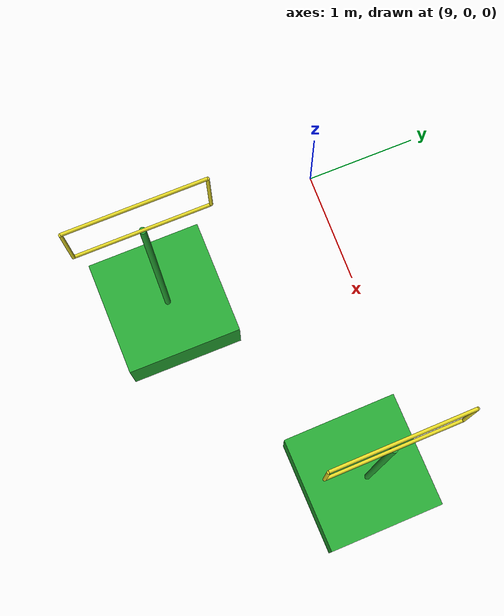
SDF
<sdf version="1.6">
 <world name="vrc_task_1">
  <model name="flipkart_hoop_clone_4">
   <link name="link_0">
    <inertial>
     <mass>0.530306</mass>
     <inertia>
      <ixx>0.0566207</ixx>
      <ixy>0</ixy>
      <ixz>0</ixz>
      <iyy>0.0566207</iyy>
      <iyz>0</iyz>
      <izz>0.0883844</izz>
     </inertia>
    </inertial>
    <pose>0.141833 0.667401 -1.68595 0 -0 0</pose>
    <visual name="visual">
     <geometry><box><size>1 1 0.5</size></box></geometry>
     <material>
      <lighting>1</lighting>
      <script><uri>file://media/materials/scripts/gazebo.material</uri><name>Gazebo/Green</name></script>
      <shader type="pixel"/>
      <emissive>0 0 0 1</emissive>
     </material>
    </visual>
    <collision name="collision">
     <geometry><box><size>1 1 0.5</size></box></geometry>
     <surface>
      <friction>
       <ode><mu>1</mu><mu2>1</mu2><fdir1>0 0 0</fdir1><slip1>0</slip1><slip2>0</slip2></ode>
       <torsional>
        <coefficient>1</coefficient>
        <patch_radius>0</patch_radius>
        <surface_radius>0</surface_radius>
        <use_patch_radius>1</use_patch_radius>
        <ode><slip>0</slip></ode>
       </torsional>
      </friction>
      <bounce><restitution_coefficient>0</restitution_coefficient><threshold>1e+06</threshold></bounce>
      <contact>
       <collide_without_contact>0</collide_without_contact>
       <collide_without_contact_bitmask>1</collide_without_contact_bitmask>
       <collide_bitmask>1</collide_bitmask>
       <ode>
        <soft_cfm>0</soft_cfm>
        <soft_erp>0.2</soft_erp>
        <kp>1e+13</kp>
        <kd>1</kd>
        <max_vel>0.01</max_vel>
        <min_depth>0</min_depth>
       </ode>
       <bullet>
        <split_impulse>1</split_impulse>
        <split_impulse_penetration_threshold>-0.01</split_impulse_penetration_threshold>
        <soft_cfm>0</soft_cfm>
        <soft_erp>0.2</soft_erp>
        <kp>1e+13</kp>
        <kd>1</kd>
       </bullet>
      </contact>
     </surface>
    </collision>
   </link>
   <link name="link_1">
    <inertial>
     <mass>0.25</mass>
     <inertia>
      <ixx>0.130247</ixx>
      <ixy>0</ixy>
      <ixz>0</ixz>
      <iyy>0.130247</iyy>
      <iyz>0</iyz>
      <izz>7.813e-05</izz>
     </inertia>
    </inertial>
    <pose>0.122412 0.714194 -0.478486 0 -0 0</pose>
    <visual name="visual">
     <geometry><cylinder><radius>0.025</radius><length>2.5</length></cylinder></geometry>
     <material>
      <lighting>1</lighting>
      <script><uri>file://media/materials/scripts/gazebo.material</uri><name>Gazebo/Green</name></script>
      <shader type="pixel"/>
      <emissive>0 0 0 1</emissive>
     </material>
    </visual>
    <collision name="collision">
     <geometry><cylinder><radius>0.025</radius><length>2.5</length></cylinder></geometry>
     <surface>
      <friction>
       <ode><mu>1</mu><mu2>1</mu2><fdir1>0 0 0</fdir1><slip1>0</slip1><slip2>0</slip2></ode>
       <torsional>
        <coefficient>1</coefficient>
        <patch_radius>0</patch_radius>
        <surface_radius>0</surface_radius>
        <use_patch_radius>1</use_patch_radius>
        <ode><slip>0</slip></ode>
       </torsional>
      </friction>
      <bounce><restitution_coefficient>0</restitution_coefficient><threshold>1e+06</threshold></bounce>
      <contact>
       <collide_without_contact>0</collide_without_contact>
       <collide_without_contact_bitmask>1</collide_without_contact_bitmask>
       <collide_bitmask>1</collide_bitmask>
       <ode>
        <soft_cfm>0</soft_cfm>
        <soft_erp>0.2</soft_erp>
        <kp>1e+13</kp>
        <kd>1</kd>
        <max_vel>0.01</max_vel>
        <min_depth>0</min_depth>
       </ode>
       <bullet>
        <split_impulse>1</split_impulse>
        <split_impulse_penetration_threshold>-0.01</split_impulse_penetration_threshold>
        <soft_cfm>0</soft_cfm>
        <soft_erp>0.2</soft_erp>
        <kp>1e+13</kp>
        <kd>1</kd>
       </bullet>
      </contact>
     </surface>
    </collision>
   </link>
   <link name="link_2">
    <inertial>
     <mass>0.05</mass>
     <inertia>
      <ixx>0.00416862</ixx>
      <ixy>0</ixy>
      <ixz>0</ixz>
      <iyy>0.00416862</iyy>
      <iyz>0</iyz>
      <izz>3.91e-06</izz>
     </inertia>
    </inertial>
    <pose>0.122412 0.714194 1.32141 1.57 -0 1.57</pose>
    <visual name="visual">
     <geometry><cylinder><radius>0.0125</radius><length>1</length></cylinder></geometry>
     <material>
      <lighting>1</lighting>
      <script><uri>file://media/materials/scripts/gazebo.material</uri><name>Gazebo/Yellow</name></script>
      <shader type="pixel"/>
      <emissive>0 0 0 1</emissive>
     </material>
    </visual>
    <collision name="collision">
     <geometry><cylinder><radius>0.0125</radius><length>1</length></cylinder></geometry>
     <surface>
      <friction>
       <ode><mu>1</mu><mu2>1</mu2><fdir1>0 0 0</fdir1><slip1>0</slip1><slip2>0</slip2></ode>
       <torsional>
        <coefficient>1</coefficient>
        <patch_radius>0</patch_radius>
        <surface_radius>0</surface_radius>
        <use_patch_radius>1</use_patch_radius>
        <ode><slip>0</slip></ode>
       </torsional>
      </friction>
      <bounce><restitution_coefficient>0</restitution_coefficient><threshold>1e+06</threshold></bounce>
      <contact>
       <collide_without_contact>0</collide_without_contact>
       <collide_without_contact_bitmask>1</collide_without_contact_bitmask>
       <collide_bitmask>1</collide_bitmask>
       <ode>
        <soft_cfm>0</soft_cfm>
        <soft_erp>0.2</soft_erp>
        <kp>1e+13</kp>
        <kd>1</kd>
        <max_vel>0.01</max_vel>
        <min_depth>0</min_depth>
       </ode>
       <bullet>
        <split_impulse>1</split_impulse>
        <split_impulse_penetration_threshold>-0.01</split_impulse_penetration_threshold>
        <soft_cfm>0</soft_cfm>
        <soft_erp>0.2</soft_erp>
        <kp>1e+13</kp>
        <kd>1</kd>
       </bullet>
      </contact>
     </surface>
    </collision>
   </link>
   <link name="link_2_clone_0">
    <inertial>
     <mass>0.05</mass>
     <inertia>
      <ixx>0.00416862</ixx>
      <ixy>0</ixy>
      <ixz>0</ixz>
      <iyy>0.00416862</iyy>
      <iyz>0</iyz>
      <izz>3.91e-06</izz>
     </inertia>
    </inertial>
    <pose>0.122412 0.714194 0.771414 1.57 -0 1.57</pose>
    <visual name="visual">
     <geometry><cylinder><radius>0.0125</radius><length>1</length></cylinder></geometry>
     <material>
      <lighting>1</lighting>
      <script><uri>file://media/materials/scripts/gazebo.material</uri><name>Gazebo/Yellow</name></script>
      <shader type="pixel"/>
      <emissive>0 0 0 1</emissive>
     </material>
    </visual>
    <collision name="collision">
     <geometry><cylinder><radius>0.0125</radius><length>1</length></cylinder></geometry>
     <surface>
      <friction>
       <ode><mu>1</mu><mu2>1</mu2><fdir1>0 0 0</fdir1><slip1>0</slip1><slip2>0</slip2></ode>
       <torsional>
        <coefficient>1</coefficient>
        <patch_radius>0</patch_radius>
        <surface_radius>0</surface_radius>
        <use_patch_radius>1</use_patch_radius>
        <ode><slip>0</slip></ode>
       </torsional>
      </friction>
      <bounce><restitution_coefficient>0</restitution_coefficient><threshold>1e+06</threshold></bounce>
      <contact>
       <collide_without_contact>0</collide_without_contact>
       <collide_without_contact_bitmask>1</collide_without_contact_bitmask>
       <collide_bitmask>1</collide_bitmask>
       <ode>
        <soft_cfm>0</soft_cfm>
        <soft_erp>0.2</soft_erp>
        <kp>1e+13</kp>
        <kd>1</kd>
        <max_vel>0.01</max_vel>
        <min_depth>0</min_depth>
       </ode>
       <bullet>
        <split_impulse>1</split_impulse>
        <split_impulse_penetration_threshold>-0.01</split_impulse_penetration_threshold>
        <soft_cfm>0</soft_cfm>
        <soft_erp>0.2</soft_erp>
        <kp>1e+13</kp>
        <kd>1</kd>
       </bullet>
      </contact>
     </surface>
    </collision>
   </link>
   <link name="link_3_clone_clone">
    <inertial>
     <mass>0.025</mass>
     <inertia>
      <ixx>0.00063118</ixx>
      <ixy>0</ixy>
      <ixz>0</ixz>
      <iyy>0.00063118</iyy>
      <iyz>0</iyz>
      <izz>1.95e-06</izz>
     </inertia>
    </inertial>
    <pose>-0.377588 0.714194 1.04641 8e-06 -0 8e-06</pose>
    <visual name="visual">
     <geometry><cylinder><radius>0.0125</radius><length>0.55</length></cylinder></geometry>
     <material>
      <lighting>1</lighting>
      <script><uri>file://media/materials/scripts/gazebo.material</uri><name>Gazebo/Yellow</name></script>
      <shader type="pixel"/>
      <emissive>0 0 0 1</emissive>
     </material>
    </visual>
    <collision name="collision">
     <geometry><cylinder><radius>0.0125</radius><length>0.55</length></cylinder></geometry>
     <surface>
      <friction>
       <ode><mu>1</mu><mu2>1</mu2><fdir1>0 0 0</fdir1><slip1>0</slip1><slip2>0</slip2></ode>
       <torsional>
        <coefficient>1</coefficient>
        <patch_radius>0</patch_radius>
        <surface_radius>0</surface_radius>
        <use_patch_radius>1</use_patch_radius>
        <ode><slip>0</slip></ode>
       </torsional>
      </friction>
      <bounce><restitution_coefficient>0</restitution_coefficient><threshold>1e+06</threshold></bounce>
      <contact>
       <collide_without_contact>0</collide_without_contact>
       <collide_without_contact_bitmask>1</collide_without_contact_bitmask>
       <collide_bitmask>1</collide_bitmask>
       <ode>
        <soft_cfm>0</soft_cfm>
        <soft_erp>0.2</soft_erp>
        <kp>1e+13</kp>
        <kd>1</kd>
        <max_vel>0.01</max_vel>
        <min_depth>0</min_depth>
       </ode>
       <bullet>
        <split_impulse>1</split_impulse>
        <split_impulse_penetration_threshold>-0.01</split_impulse_penetration_threshold>
        <soft_cfm>0</soft_cfm>
        <soft_erp>0.2</soft_erp>
        <kp>1e+13</kp>
        <kd>1</kd>
       </bullet>
      </contact>
     </surface>
    </collision>
   </link>
   <link name="link_3_clone_clone_clone">
    <inertial>
     <mass>0.025</mass>
     <inertia>
      <ixx>0.00063118</ixx>
      <ixy>0</ixy>
      <ixz>0</ixz>
      <iyy>0.00063118</iyy>
      <iyz>0</iyz>
      <izz>1.95e-06</izz>
     </inertia>
    </inertial>
    <pose>0.622412 0.714194 1.04641 5.7e-05 -0 5.7e-05</pose>
    <visual name="visual">
     <geometry><cylinder><radius>0.0125</radius><length>0.55</length></cylinder></geometry>
     <material>
      <lighting>1</lighting>
      <script><uri>file://media/materials/scripts/gazebo.material</uri><name>Gazebo/Yellow</name></script>
      <shader type="pixel"/>
      <emissive>0 0 0 1</emissive>
     </material>
    </visual>
    <collision name="collision">
     <geometry><cylinder><radius>0.0125</radius><length>0.55</length></cylinder></geometry>
     <surface>
      <friction>
       <ode><mu>1</mu><mu2>1</mu2><fdir1>0 0 0</fdir1><slip1>0</slip1><slip2>0</slip2></ode>
       <torsional>
        <coefficient>1</coefficient>
        <patch_radius>0</patch_radius>
        <surface_radius>0</surface_radius>
        <use_patch_radius>1</use_patch_radius>
        <ode><slip>0</slip></ode>
       </torsional>
      </friction>
      <bounce><restitution_coefficient>0</restitution_coefficient><threshold>1e+06</threshold></bounce>
      <contact>
       <collide_without_contact>0</collide_without_contact>
       <collide_without_contact_bitmask>1</collide_without_contact_bitmask>
       <collide_bitmask>1</collide_bitmask>
       <ode>
        <soft_cfm>0</soft_cfm>
        <soft_erp>0.2</soft_erp>
        <kp>1e+13</kp>
        <kd>1</kd>
        <max_vel>0.01</max_vel>
        <min_depth>0</min_depth>
       </ode>
       <bullet>
        <split_impulse>1</split_impulse>
        <split_impulse_penetration_threshold>-0.01</split_impulse_penetration_threshold>
        <soft_cfm>0</soft_cfm>
        <soft_erp>0.2</soft_erp>
        <kp>1e+13</kp>
        <kd>1</kd>
       </bullet>
      </contact>
     </surface>
    </collision>
   </link>
   <joint name="link_0_JOINT_0" type="fixed">
    <parent>link_0</parent>
    <child>link_1</child>
    <physics>
     <ode><limit><cfm>0</cfm><erp>0.2</erp></limit><suspension><cfm>0</cfm><erp>0.2</erp></suspension></ode>
    </physics>
   </joint>
   <joint name="link_1_JOINT_0" type="fixed">
    <parent>link_1</parent>
    <child>link_2_clone_0</child>
    <physics>
     <ode><limit><cfm>0</cfm><erp>0.2</erp></limit><suspension><cfm>0</cfm><erp>0.2</erp></suspension></ode>
    </physics>
   </joint>
   <joint name="link_2_JOINT_2" type="fixed">
    <parent>link_2</parent>
    <child>link_3_clone_clone_clone</child>
    <physics>
     <ode><limit><cfm>0</cfm><erp>0.2</erp></limit><suspension><cfm>0</cfm><erp>0.2</erp></suspension></ode>
    </physics>
   </joint>
   <joint name="link_2_clone_0_JOINT_4" type="fixed">
    <parent>link_2_clone_0</parent>
    <child>link_3_clone_clone</child>
    <physics>
     <ode><limit><cfm>0</cfm><erp>0.2</erp></limit><suspension><cfm>0</cfm><erp>0.2</erp></suspension></ode>
    </physics>
   </joint>
   <joint name="link_3_clone_clone_JOINT_1" type="fixed">
    <parent>link_3_clone_clone</parent>
    <child>link_2</child>
    <physics>
     <ode><limit><cfm>0</cfm><erp>0.2</erp></limit><suspension><cfm>0</cfm><erp>0.2</erp></suspension></ode>
    </physics>
   </joint>
   <joint name="link_3_clone_clone_clone_JOINT_3" type="fixed">
    <parent>link_3_clone_clone_clone</parent>
    <child>link_2_clone_0</child>
    <physics>
     <ode><limit><cfm>0</cfm><erp>0.2</erp></limit><suspension><cfm>0</cfm><erp>0.2</erp></suspension></ode>
    </physics>
   </joint>
   <static>0</static>
   <pose>9.00044 -1.50062 1.93592 0 6e-05 -1.5657</pose>
  </model>
  <model name="flipkart_hoop_clone_6">
   <link name="link_0">
    <inertial>
     <mass>0.530306</mass>
     <inertia>
      <ixx>0.0566207</ixx>
      <ixy>0</ixy>
      <ixz>0</ixz>
      <iyy>0.0566207</iyy>
      <iyz>0</iyz>
      <izz>0.0883844</izz>
     </inertia>
    </inertial>
    <pose>0.141833 0.667401 -1.68595 0 -0 0</pose>
    <visual name="visual">
     <geometry><box><size>1 1 0.5</size></box></geometry>
     <material>
      <lighting>1</lighting>
      <script><uri>file://media/materials/scripts/gazebo.material</uri><name>Gazebo/Green</name></script>
      <shader type="pixel"/>
      <emissive>0 0 0 1</emissive>
     </material>
    </visual>
    <collision name="collision">
     <geometry><box><size>1 1 0.5</size></box></geometry>
     <surface>
      <friction>
       <ode><mu>1</mu><mu2>1</mu2><fdir1>0 0 0</fdir1><slip1>0</slip1><slip2>0</slip2></ode>
       <torsional>
        <coefficient>1</coefficient>
        <patch_radius>0</patch_radius>
        <surface_radius>0</surface_radius>
        <use_patch_radius>1</use_patch_radius>
        <ode><slip>0</slip></ode>
       </torsional>
      </friction>
      <bounce><restitution_coefficient>0</restitution_coefficient><threshold>1e+06</threshold></bounce>
      <contact>
       <collide_without_contact>0</collide_without_contact>
       <collide_without_contact_bitmask>1</collide_without_contact_bitmask>
       <collide_bitmask>1</collide_bitmask>
       <ode>
        <soft_cfm>0</soft_cfm>
        <soft_erp>0.2</soft_erp>
        <kp>1e+13</kp>
        <kd>1</kd>
        <max_vel>0.01</max_vel>
        <min_depth>0</min_depth>
       </ode>
       <bullet>
        <split_impulse>1</split_impulse>
        <split_impulse_penetration_threshold>-0.01</split_impulse_penetration_threshold>
        <soft_cfm>0</soft_cfm>
        <soft_erp>0.2</soft_erp>
        <kp>1e+13</kp>
        <kd>1</kd>
       </bullet>
      </contact>
     </surface>
    </collision>
   </link>
   <link name="link_1">
    <inertial>
     <mass>0.25</mass>
     <inertia>
      <ixx>0.130247</ixx>
      <ixy>0</ixy>
      <ixz>0</ixz>
      <iyy>0.130247</iyy>
      <iyz>0</iyz>
      <izz>7.813e-05</izz>
     </inertia>
    </inertial>
    <pose>0.122412 0.714194 -0.478486 0 -0 0</pose>
    <visual name="visual">
     <geometry><cylinder><radius>0.025</radius><length>2.5</length></cylinder></geometry>
     <material>
      <lighting>1</lighting>
      <script><uri>file://media/materials/scripts/gazebo.material</uri><name>Gazebo/Green</name></script>
      <shader type="pixel"/>
      <emissive>0 0 0 1</emissive>
     </material>
    </visual>
    <collision name="collision">
     <geometry><cylinder><radius>0.025</radius><length>2.5</length></cylinder></geometry>
     <surface>
      <friction>
       <ode><mu>1</mu><mu2>1</mu2><fdir1>0 0 0</fdir1><slip1>0</slip1><slip2>0</slip2></ode>
       <torsional>
        <coefficient>1</coefficient>
        <patch_radius>0</patch_radius>
        <surface_radius>0</surface_radius>
        <use_patch_radius>1</use_patch_radius>
        <ode><slip>0</slip></ode>
       </torsional>
      </friction>
      <bounce><restitution_coefficient>0</restitution_coefficient><threshold>1e+06</threshold></bounce>
      <contact>
       <collide_without_contact>0</collide_without_contact>
       <collide_without_contact_bitmask>1</collide_without_contact_bitmask>
       <collide_bitmask>1</collide_bitmask>
       <ode>
        <soft_cfm>0</soft_cfm>
        <soft_erp>0.2</soft_erp>
        <kp>1e+13</kp>
        <kd>1</kd>
        <max_vel>0.01</max_vel>
        <min_depth>0</min_depth>
       </ode>
       <bullet>
        <split_impulse>1</split_impulse>
        <split_impulse_penetration_threshold>-0.01</split_impulse_penetration_threshold>
        <soft_cfm>0</soft_cfm>
        <soft_erp>0.2</soft_erp>
        <kp>1e+13</kp>
        <kd>1</kd>
       </bullet>
      </contact>
     </surface>
    </collision>
   </link>
   <link name="link_2">
    <inertial>
     <mass>0.05</mass>
     <inertia>
      <ixx>0.00416862</ixx>
      <ixy>0</ixy>
      <ixz>0</ixz>
      <iyy>0.00416862</iyy>
      <iyz>0</iyz>
      <izz>3.91e-06</izz>
     </inertia>
    </inertial>
    <pose>0.122412 0.714194 1.32141 1.57 -0 1.57</pose>
    <visual name="visual">
     <geometry><cylinder><radius>0.0125</radius><length>1</length></cylinder></geometry>
     <material>
      <lighting>1</lighting>
      <script><uri>file://media/materials/scripts/gazebo.material</uri><name>Gazebo/Yellow</name></script>
      <shader type="pixel"/>
      <emissive>0 0 0 1</emissive>
     </material>
    </visual>
    <collision name="collision">
     <geometry><cylinder><radius>0.0125</radius><length>1</length></cylinder></geometry>
     <surface>
      <friction>
       <ode><mu>1</mu><mu2>1</mu2><fdir1>0 0 0</fdir1><slip1>0</slip1><slip2>0</slip2></ode>
       <torsional>
        <coefficient>1</coefficient>
        <patch_radius>0</patch_radius>
        <surface_radius>0</surface_radius>
        <use_patch_radius>1</use_patch_radius>
        <ode><slip>0</slip></ode>
       </torsional>
      </friction>
      <bounce><restitution_coefficient>0</restitution_coefficient><threshold>1e+06</threshold></bounce>
      <contact>
       <collide_without_contact>0</collide_without_contact>
       <collide_without_contact_bitmask>1</collide_without_contact_bitmask>
       <collide_bitmask>1</collide_bitmask>
       <ode>
        <soft_cfm>0</soft_cfm>
        <soft_erp>0.2</soft_erp>
        <kp>1e+13</kp>
        <kd>1</kd>
        <max_vel>0.01</max_vel>
        <min_depth>0</min_depth>
       </ode>
       <bullet>
        <split_impulse>1</split_impulse>
        <split_impulse_penetration_threshold>-0.01</split_impulse_penetration_threshold>
        <soft_cfm>0</soft_cfm>
        <soft_erp>0.2</soft_erp>
        <kp>1e+13</kp>
        <kd>1</kd>
       </bullet>
      </contact>
     </surface>
    </collision>
   </link>
   <link name="link_2_clone_0">
    <inertial>
     <mass>0.05</mass>
     <inertia>
      <ixx>0.00416862</ixx>
      <ixy>0</ixy>
      <ixz>0</ixz>
      <iyy>0.00416862</iyy>
      <iyz>0</iyz>
      <izz>3.91e-06</izz>
     </inertia>
    </inertial>
    <pose>0.122412 0.714194 0.771414 1.57 -0 1.57</pose>
    <visual name="visual">
     <geometry><cylinder><radius>0.0125</radius><length>1</length></cylinder></geometry>
     <material>
      <lighting>1</lighting>
      <script><uri>file://media/materials/scripts/gazebo.material</uri><name>Gazebo/Yellow</name></script>
      <shader type="pixel"/>
      <emissive>0 0 0 1</emissive>
     </material>
    </visual>
    <collision name="collision">
     <geometry><cylinder><radius>0.0125</radius><length>1</length></cylinder></geometry>
     <surface>
      <friction>
       <ode><mu>1</mu><mu2>1</mu2><fdir1>0 0 0</fdir1><slip1>0</slip1><slip2>0</slip2></ode>
       <torsional>
        <coefficient>1</coefficient>
        <patch_radius>0</patch_radius>
        <surface_radius>0</surface_radius>
        <use_patch_radius>1</use_patch_radius>
        <ode><slip>0</slip></ode>
       </torsional>
      </friction>
      <bounce><restitution_coefficient>0</restitution_coefficient><threshold>1e+06</threshold></bounce>
      <contact>
       <collide_without_contact>0</collide_without_contact>
       <collide_without_contact_bitmask>1</collide_without_contact_bitmask>
       <collide_bitmask>1</collide_bitmask>
       <ode>
        <soft_cfm>0</soft_cfm>
        <soft_erp>0.2</soft_erp>
        <kp>1e+13</kp>
        <kd>1</kd>
        <max_vel>0.01</max_vel>
        <min_depth>0</min_depth>
       </ode>
       <bullet>
        <split_impulse>1</split_impulse>
        <split_impulse_penetration_threshold>-0.01</split_impulse_penetration_threshold>
        <soft_cfm>0</soft_cfm>
        <soft_erp>0.2</soft_erp>
        <kp>1e+13</kp>
        <kd>1</kd>
       </bullet>
      </contact>
     </surface>
    </collision>
   </link>
   <link name="link_3_clone_clone">
    <inertial>
     <mass>0.025</mass>
     <inertia>
      <ixx>0.00063118</ixx>
      <ixy>0</ixy>
      <ixz>0</ixz>
      <iyy>0.00063118</iyy>
      <iyz>0</iyz>
      <izz>1.95e-06</izz>
     </inertia>
    </inertial>
    <pose>-0.377588 0.714194 1.04641 8e-06 -0 8e-06</pose>
    <visual name="visual">
     <geometry><cylinder><radius>0.0125</radius><length>0.55</length></cylinder></geometry>
     <material>
      <lighting>1</lighting>
      <script><uri>file://media/materials/scripts/gazebo.material</uri><name>Gazebo/Yellow</name></script>
      <shader type="pixel"/>
      <emissive>0 0 0 1</emissive>
     </material>
    </visual>
    <collision name="collision">
     <geometry><cylinder><radius>0.0125</radius><length>0.55</length></cylinder></geometry>
     <surface>
      <friction>
       <ode><mu>1</mu><mu2>1</mu2><fdir1>0 0 0</fdir1><slip1>0</slip1><slip2>0</slip2></ode>
       <torsional>
        <coefficient>1</coefficient>
        <patch_radius>0</patch_radius>
        <surface_radius>0</surface_radius>
        <use_patch_radius>1</use_patch_radius>
        <ode><slip>0</slip></ode>
       </torsional>
      </friction>
      <bounce><restitution_coefficient>0</restitution_coefficient><threshold>1e+06</threshold></bounce>
      <contact>
       <collide_without_contact>0</collide_without_contact>
       <collide_without_contact_bitmask>1</collide_without_contact_bitmask>
       <collide_bitmask>1</collide_bitmask>
       <ode>
        <soft_cfm>0</soft_cfm>
        <soft_erp>0.2</soft_erp>
        <kp>1e+13</kp>
        <kd>1</kd>
        <max_vel>0.01</max_vel>
        <min_depth>0</min_depth>
       </ode>
       <bullet>
        <split_impulse>1</split_impulse>
        <split_impulse_penetration_threshold>-0.01</split_impulse_penetration_threshold>
        <soft_cfm>0</soft_cfm>
        <soft_erp>0.2</soft_erp>
        <kp>1e+13</kp>
        <kd>1</kd>
       </bullet>
      </contact>
     </surface>
    </collision>
   </link>
   <link name="link_3_clone_clone_clone">
    <inertial>
     <mass>0.025</mass>
     <inertia>
      <ixx>0.00063118</ixx>
      <ixy>0</ixy>
      <ixz>0</ixz>
      <iyy>0.00063118</iyy>
      <iyz>0</iyz>
      <izz>1.95e-06</izz>
     </inertia>
    </inertial>
    <pose>0.622412 0.714194 1.04641 5.7e-05 -0 5.7e-05</pose>
    <visual name="visual">
     <geometry><cylinder><radius>0.0125</radius><length>0.55</length></cylinder></geometry>
     <material>
      <lighting>1</lighting>
      <script><uri>file://media/materials/scripts/gazebo.material</uri><name>Gazebo/Yellow</name></script>
      <shader type="pixel"/>
      <emissive>0 0 0 1</emissive>
     </material>
    </visual>
    <collision name="collision">
     <geometry><cylinder><radius>0.0125</radius><length>0.55</length></cylinder></geometry>
     <surface>
      <friction>
       <ode><mu>1</mu><mu2>1</mu2><fdir1>0 0 0</fdir1><slip1>0</slip1><slip2>0</slip2></ode>
       <torsional>
        <coefficient>1</coefficient>
        <patch_radius>0</patch_radius>
        <surface_radius>0</surface_radius>
        <use_patch_radius>1</use_patch_radius>
        <ode><slip>0</slip></ode>
       </torsional>
      </friction>
      <bounce><restitution_coefficient>0</restitution_coefficient><threshold>1e+06</threshold></bounce>
      <contact>
       <collide_without_contact>0</collide_without_contact>
       <collide_without_contact_bitmask>1</collide_without_contact_bitmask>
       <collide_bitmask>1</collide_bitmask>
       <ode>
        <soft_cfm>0</soft_cfm>
        <soft_erp>0.2</soft_erp>
        <kp>1e+13</kp>
        <kd>1</kd>
        <max_vel>0.01</max_vel>
        <min_depth>0</min_depth>
       </ode>
       <bullet>
        <split_impulse>1</split_impulse>
        <split_impulse_penetration_threshold>-0.01</split_impulse_penetration_threshold>
        <soft_cfm>0</soft_cfm>
        <soft_erp>0.2</soft_erp>
        <kp>1e+13</kp>
        <kd>1</kd>
       </bullet>
      </contact>
     </surface>
    </collision>
   </link>
   <joint name="link_0_JOINT_0" type="fixed">
    <parent>link_0</parent>
    <child>link_1</child>
    <physics>
     <ode><limit><cfm>0</cfm><erp>0.2</erp></limit><suspension><cfm>0</cfm><erp>0.2</erp></suspension></ode>
    </physics>
   </joint>
   <joint name="link_1_JOINT_0" type="fixed">
    <parent>link_1</parent>
    <child>link_2_clone_0</child>
    <physics>
     <ode><limit><cfm>0</cfm><erp>0.2</erp></limit><suspension><cfm>0</cfm><erp>0.2</erp></suspension></ode>
    </physics>
   </joint>
   <joint name="link_2_JOINT_2" type="fixed">
    <parent>link_2</parent>
    <child>link_3_clone_clone_clone</child>
    <physics>
     <ode><limit><cfm>0</cfm><erp>0.2</erp></limit><suspension><cfm>0</cfm><erp>0.2</erp></suspension></ode>
    </physics>
   </joint>
   <joint name="link_2_clone_0_JOINT_4" type="fixed">
    <parent>link_2_clone_0</parent>
    <child>link_3_clone_clone</child>
    <physics>
     <ode><limit><cfm>0</cfm><erp>0.2</erp></limit><suspension><cfm>0</cfm><erp>0.2</erp></suspension></ode>
    </physics>
   </joint>
   <joint name="link_3_clone_clone_JOINT_1" type="fixed">
    <parent>link_3_clone_clone</parent>
    <child>link_2</child>
    <physics>
     <ode><limit><cfm>0</cfm><erp>0.2</erp></limit><suspension><cfm>0</cfm><erp>0.2</erp></suspension></ode>
    </physics>
   </joint>
   <joint name="link_3_clone_clone_clone_JOINT_3" type="fixed">
    <parent>link_3_clone_clone_clone</parent>
    <child>link_2_clone_0</child>
    <physics>
     <ode><limit><cfm>0</cfm><erp>0.2</erp></limit><suspension><cfm>0</cfm><erp>0.2</erp></suspension></ode>
    </physics>
   </joint>
   <static>0</static>
   <pose>11.0006 -0.499074 1.9359 1e-06 -6.6e-05 -1.54764</pose>
  </model>
 </world>
</sdf>
